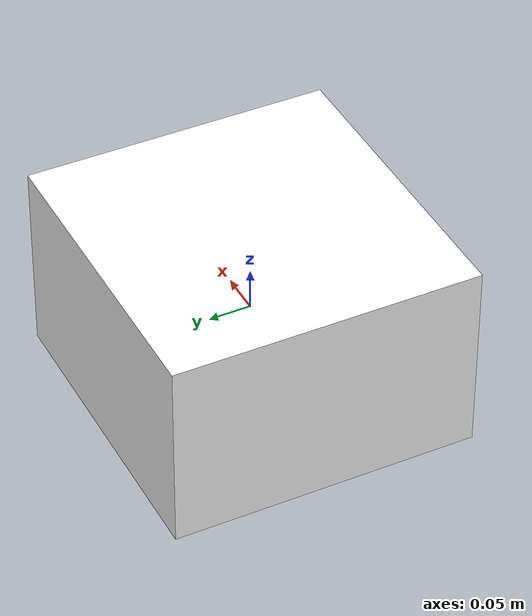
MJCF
<mujoco>
  <compiler angle="radian" assetdir="assets" autolimits="true"/>

  <asset>

    <!-- Textures -->
    <texture type="2d" colorspace="sRGB" name="carton_04_uv" file="carton_04_uv.png"/>

    <!-- Materials -->
    <material name="MI_carton_04" rgba="1 1 1 1" reflectance="0.5" metallic="0.0" roughness="0.5">
      <layer texture="carton_04_uv" role="rgb"/>
    </material>

    <!-- Visual meshes -->
    <mesh class="visual" name="V_carton_04" file="V_carton_04.obj"/>

  </asset>

  <default>
      <default class="visual">
        <geom type="mesh" contype="0" conaffinity="0" group="2" density="0"/>
      </default>
  </default>

  <worldbody>
    <body name="B_carton_04" pos="0.0 0.0 0.0" quat="1.0 0.0 0.0 0.0">
      <geom class="visual" mesh="V_carton_04" pos="0.0 0.0 0.0" quat="1.0 0.0 0.0 0.0" material="MI_carton_04"/>
    </body>
  </worldbody>

</mujoco>
